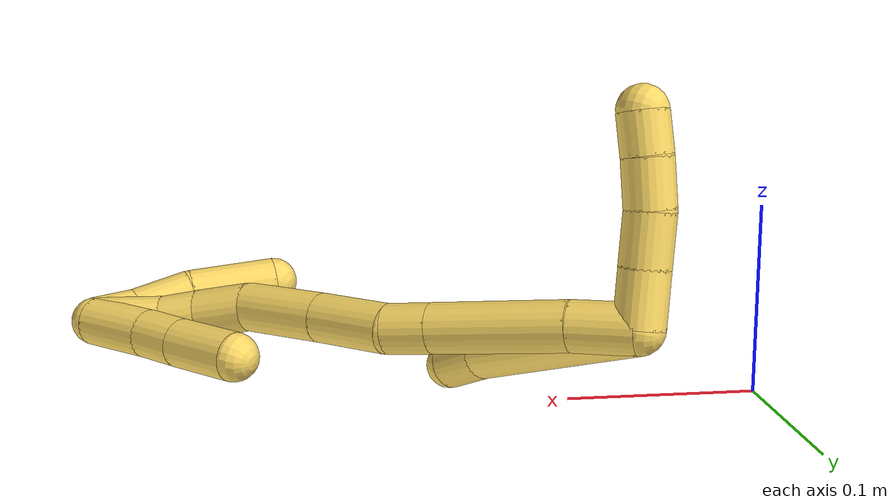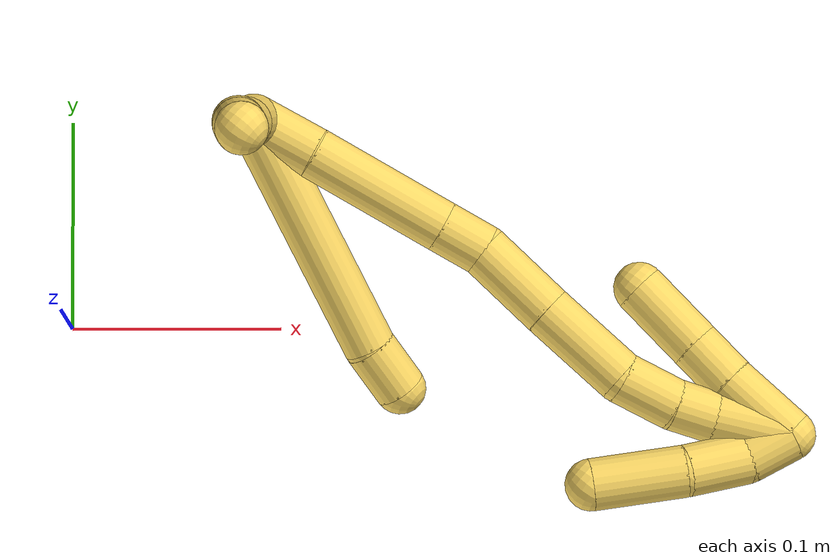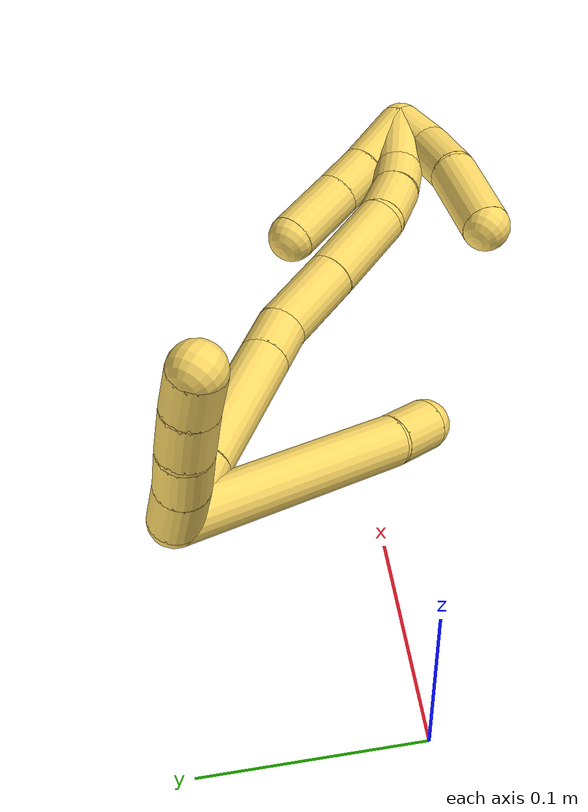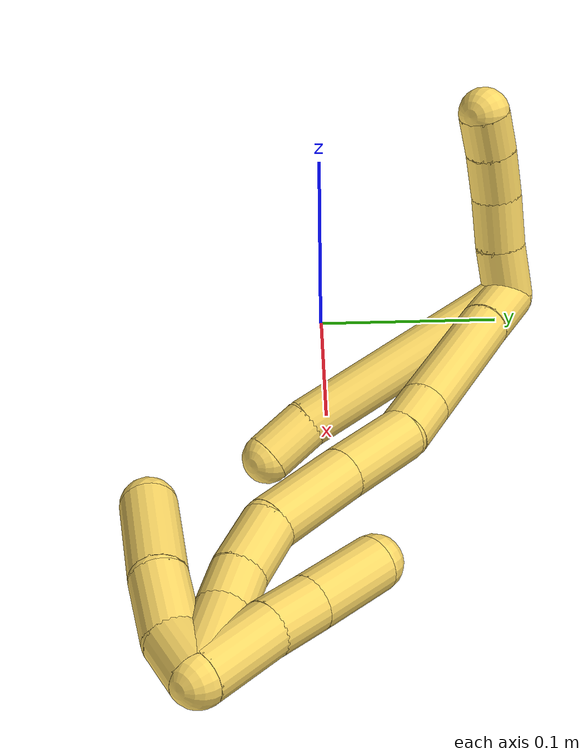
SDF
<sdf version="1.7">
 <world name="default">
  <model name="5">
   <static>0</static>
   <link name="5">
    <collision name="collision-cylinder-e_1_2_8">
     <pose>0.002382 -0.034576 0.051373 0.592393 0.038443 0.011733</pose>
     <geometry><cylinder><radius>0.0125</radius><length>0.123941</length></cylinder></geometry>
     <surface>
      <friction><ode><mu>1.16</mu><mu2>1.16</mu2><slip1>0</slip1><slip2>0</slip2></ode></friction>
      <contact><ode><kp>1e+06</kp><kd>1</kd><max_vel>0</max_vel><min_depth>0.001</min_depth></ode></contact>
     </surface>
    </collision>
    <visual name="visual-cylinder-e_1_2_8">
     <pose>0.002382 -0.034576 0.051373 0.592393 0.038443 0.011733</pose>
     <geometry><cylinder><radius>0.0125</radius><length>0.123941</length></cylinder></geometry>
     <material><ambient>1 0.858824 0.4 1</ambient></material>
    </visual>
    <collision name="collision-cylinder-e_2_8_6">
     <pose>0.007338 -0.075636 0.113751 0.532497 0.198889 0.054408</pose>
     <geometry><cylinder><radius>0.0125</radius><length>0.026059</length></cylinder></geometry>
     <surface>
      <friction><ode><mu>1.16</mu><mu2>1.16</mu2><slip1>0</slip1><slip2>0</slip2></ode></friction>
      <contact><ode><kp>1e+06</kp><kd>1</kd><max_vel>0</max_vel><min_depth>0.001</min_depth></ode></contact>
     </surface>
    </collision>
    <visual name="visual-cylinder-e_2_8_6">
     <pose>0.007338 -0.075636 0.113751 0.532497 0.198889 0.054408</pose>
     <geometry><cylinder><radius>0.0125</radius><length>0.026059</length></cylinder></geometry>
     <material><ambient>1 0.858824 0.4 1</ambient></material>
    </visual>
    <collision name="collision-cylinder-e_1_2_9">
     <pose>-0.011684 0.007449 0.001854 -1.32681 -0.989533 0.798112</pose>
     <geometry><cylinder><radius>0.0125</radius><length>0.02796</length></cylinder></geometry>
     <surface>
      <friction><ode><mu>1.16</mu><mu2>1.16</mu2><slip1>0</slip1><slip2>0</slip2></ode></friction>
      <contact><ode><kp>1e+06</kp><kd>1</kd><max_vel>0</max_vel><min_depth>0.001</min_depth></ode></contact>
     </surface>
    </collision>
    <visual name="visual-cylinder-e_1_2_9">
     <pose>-0.011684 0.007449 0.001854 -1.32681 -0.989533 0.798112</pose>
     <geometry><cylinder><radius>0.0125</radius><length>0.02796</length></cylinder></geometry>
     <material><ambient>1 0.858824 0.4 1</ambient></material>
    </visual>
    <collision name="collision-cylinder-e_2_9_10">
     <pose>-0.034146 0.02271 0.005111 -1.39321 -0.936011 0.800042</pose>
     <geometry><cylinder><radius>0.0125</radius><length>0.026769</length></cylinder></geometry>
     <surface>
      <friction><ode><mu>1.16</mu><mu2>1.16</mu2><slip1>0</slip1><slip2>0</slip2></ode></friction>
      <contact><ode><kp>1e+06</kp><kd>1</kd><max_vel>0</max_vel><min_depth>0.001</min_depth></ode></contact>
     </surface>
    </collision>
    <visual name="visual-cylinder-e_2_9_10">
     <pose>-0.034146 0.02271 0.005111 -1.39321 -0.936011 0.800042</pose>
     <geometry><cylinder><radius>0.0125</radius><length>0.026769</length></cylinder></geometry>
     <material><ambient>1 0.858824 0.4 1</ambient></material>
    </visual>
    <collision name="collision-cylinder-e_3_10_11">
     <pose>-0.054153 0.03792 0.009496 -1.18748 -0.858143 0.599028</pose>
     <geometry><cylinder><radius>0.0125</radius><length>0.024398</length></cylinder></geometry>
     <surface>
      <friction><ode><mu>1.16</mu><mu2>1.16</mu2><slip1>0</slip1><slip2>0</slip2></ode></friction>
      <contact><ode><kp>1e+06</kp><kd>1</kd><max_vel>0</max_vel><min_depth>0.001</min_depth></ode></contact>
     </surface>
    </collision>
    <visual name="visual-cylinder-e_3_10_11">
     <pose>-0.054153 0.03792 0.009496 -1.18748 -0.858143 0.599028</pose>
     <geometry><cylinder><radius>0.0125</radius><length>0.024398</length></cylinder></geometry>
     <material><ambient>1 0.858824 0.4 1</ambient></material>
    </visual>
    <collision name="collision-cylinder-e_4_11_5">
     <pose>-0.071273 0.051366 0.015653 -1.08765 -0.857239 0.539131</pose>
     <geometry><cylinder><radius>0.0125</radius><length>0.020872</length></cylinder></geometry>
     <surface>
      <friction><ode><mu>1.16</mu><mu2>1.16</mu2><slip1>0</slip1><slip2>0</slip2></ode></friction>
      <contact><ode><kp>1e+06</kp><kd>1</kd><max_vel>0</max_vel><min_depth>0.001</min_depth></ode></contact>
     </surface>
    </collision>
    <visual name="visual-cylinder-e_4_11_5">
     <pose>-0.071273 0.051366 0.015653 -1.08765 -0.857239 0.539131</pose>
     <geometry><cylinder><radius>0.0125</radius><length>0.020872</length></cylinder></geometry>
     <material><ambient>1 0.858824 0.4 1</ambient></material>
    </visual>
    <collision name="collision-cylinder-e_1_2_12">
     <pose>0.003886 0.000343 0.015753 -0.021781 0.241791 -0.002646</pose>
     <geometry><cylinder><radius>0.0125</radius><length>0.032458</length></cylinder></geometry>
     <surface>
      <friction><ode><mu>1.16</mu><mu2>1.16</mu2><slip1>0</slip1><slip2>0</slip2></ode></friction>
      <contact><ode><kp>1e+06</kp><kd>1</kd><max_vel>0</max_vel><min_depth>0.001</min_depth></ode></contact>
     </surface>
    </collision>
    <visual name="visual-cylinder-e_1_2_12">
     <pose>0.003886 0.000343 0.015753 -0.021781 0.241791 -0.002646</pose>
     <geometry><cylinder><radius>0.0125</radius><length>0.032458</length></cylinder></geometry>
     <material><ambient>1 0.858824 0.4 1</ambient></material>
    </visual>
    <collision name="collision-cylinder-e_2_12_13">
     <pose>0.017457 -0.000585 0.064953 0.037987 0.281679 0.005386</pose>
     <geometry><cylinder><radius>0.0125</radius><length>0.069687</length></cylinder></geometry>
     <surface>
      <friction><ode><mu>1.16</mu><mu2>1.16</mu2><slip1>0</slip1><slip2>0</slip2></ode></friction>
      <contact><ode><kp>1e+06</kp><kd>1</kd><max_vel>0</max_vel><min_depth>0.001</min_depth></ode></contact>
     </surface>
    </collision>
    <visual name="visual-cylinder-e_2_12_13">
     <pose>0.017457 -0.000585 0.064953 0.037987 0.281679 0.005386</pose>
     <geometry><cylinder><radius>0.0125</radius><length>0.069687</length></cylinder></geometry>
     <material><ambient>1 0.858824 0.4 1</ambient></material>
    </visual>
    <collision name="collision-cylinder-e_3_13_14">
     <pose>0.030398 -0.002242 0.109521 0.034724 0.284586 0.004975</pose>
     <geometry><cylinder><radius>0.0125</radius><length>0.023189</length></cylinder></geometry>
     <surface>
      <friction><ode><mu>1.16</mu><mu2>1.16</mu2><slip1>0</slip1><slip2>0</slip2></ode></friction>
      <contact><ode><kp>1e+06</kp><kd>1</kd><max_vel>0</max_vel><min_depth>0.001</min_depth></ode></contact>
     </surface>
    </collision>
    <visual name="visual-cylinder-e_3_13_14">
     <pose>0.030398 -0.002242 0.109521 0.034724 0.284586 0.004975</pose>
     <geometry><cylinder><radius>0.0125</radius><length>0.023189</length></cylinder></geometry>
     <material><ambient>1 0.858824 0.4 1</ambient></material>
    </visual>
    <collision name="collision-cylinder-e_4_14_15">
     <pose>0.03447 -0.005671 0.141191 0.146998 0.039309 0.002895</pose>
     <geometry><cylinder><radius>0.0125</radius><length>0.041577</length></cylinder></geometry>
     <surface>
      <friction><ode><mu>1.16</mu><mu2>1.16</mu2><slip1>0</slip1><slip2>0</slip2></ode></friction>
      <contact><ode><kp>1e+06</kp><kd>1</kd><max_vel>0</max_vel><min_depth>0.001</min_depth></ode></contact>
     </surface>
    </collision>
    <visual name="visual-cylinder-e_4_14_15">
     <pose>0.03447 -0.005671 0.141191 0.146998 0.039309 0.002895</pose>
     <geometry><cylinder><radius>0.0125</radius><length>0.041577</length></cylinder></geometry>
     <material><ambient>1 0.858824 0.4 1</ambient></material>
    </visual>
    <collision name="collision-cylinder-e_5_15_16">
     <pose>0.036767 -0.011837 0.184966 0.133683 0.063062 0.004223</pose>
     <geometry><cylinder><radius>0.0125</radius><length>0.046965</length></cylinder></geometry>
     <surface>
      <friction><ode><mu>1.16</mu><mu2>1.16</mu2><slip1>0</slip1><slip2>0</slip2></ode></friction>
      <contact><ode><kp>1e+06</kp><kd>1</kd><max_vel>0</max_vel><min_depth>0.001</min_depth></ode></contact>
     </surface>
    </collision>
    <visual name="visual-cylinder-e_5_15_16">
     <pose>0.036767 -0.011837 0.184966 0.133683 0.063062 0.004223</pose>
     <geometry><cylinder><radius>0.0125</radius><length>0.046965</length></cylinder></geometry>
     <material><ambient>1 0.858824 0.4 1</ambient></material>
    </visual>
    <collision name="collision-cylinder-e_6_16_17">
     <pose>0.043624 -0.015878 0.221362 0.069546 0.386787 0.013625</pose>
     <geometry><cylinder><radius>0.0125</radius><length>0.028507</length></cylinder></geometry>
     <surface>
      <friction><ode><mu>1.16</mu><mu2>1.16</mu2><slip1>0</slip1><slip2>0</slip2></ode></friction>
      <contact><ode><kp>1e+06</kp><kd>1</kd><max_vel>0</max_vel><min_depth>0.001</min_depth></ode></contact>
     </surface>
    </collision>
    <visual name="visual-cylinder-e_6_16_17">
     <pose>0.043624 -0.015878 0.221362 0.069546 0.386787 0.013625</pose>
     <geometry><cylinder><radius>0.0125</radius><length>0.028507</length></cylinder></geometry>
     <material><ambient>1 0.858824 0.4 1</ambient></material>
    </visual>
    <collision name="collision-cylinder-e_7_17_18">
     <pose>0.053952 -0.01624 0.243589 -0.061284 0.499487 -0.015636</pose>
     <geometry><cylinder><radius>0.0125</radius><length>0.020677</length></cylinder></geometry>
     <surface>
      <friction><ode><mu>1.16</mu><mu2>1.16</mu2><slip1>0</slip1><slip2>0</slip2></ode></friction>
      <contact><ode><kp>1e+06</kp><kd>1</kd><max_vel>0</max_vel><min_depth>0.001</min_depth></ode></contact>
     </surface>
    </collision>
    <visual name="visual-cylinder-e_7_17_18">
     <pose>0.053952 -0.01624 0.243589 -0.061284 0.499487 -0.015636</pose>
     <geometry><cylinder><radius>0.0125</radius><length>0.020677</length></cylinder></geometry>
     <material><ambient>1 0.858824 0.4 1</ambient></material>
    </visual>
    <collision name="collision-cylinder-e_8_18_1">
     <pose>0.066472 -0.01165 0.269005 -0.241761 0.422184 -0.052048</pose>
     <geometry><cylinder><radius>0.0125</radius><length>0.036938</length></cylinder></geometry>
     <surface>
      <friction><ode><mu>1.16</mu><mu2>1.16</mu2><slip1>0</slip1><slip2>0</slip2></ode></friction>
      <contact><ode><kp>1e+06</kp><kd>1</kd><max_vel>0</max_vel><min_depth>0.001</min_depth></ode></contact>
     </surface>
    </collision>
    <visual name="visual-cylinder-e_8_18_1">
     <pose>0.066472 -0.01165 0.269005 -0.241761 0.422184 -0.052048</pose>
     <geometry><cylinder><radius>0.0125</radius><length>0.036938</length></cylinder></geometry>
     <material><ambient>1 0.858824 0.4 1</ambient></material>
    </visual>
    <collision name="collision-cylinder-e_1_1_19">
     <pose>0.065692 -0.014623 0.280894 2.13859 -0.787667 -1.29712</pose>
     <geometry><cylinder><radius>0.0125</radius><length>0.023558</length></cylinder></geometry>
     <surface>
      <friction><ode><mu>1.16</mu><mu2>1.16</mu2><slip1>0</slip1><slip2>0</slip2></ode></friction>
      <contact><ode><kp>1e+06</kp><kd>1</kd><max_vel>0</max_vel><min_depth>0.001</min_depth></ode></contact>
     </surface>
    </collision>
    <visual name="visual-cylinder-e_1_1_19">
     <pose>0.065692 -0.014623 0.280894 2.13859 -0.787667 -1.29712</pose>
     <geometry><cylinder><radius>0.0125</radius><length>0.023558</length></cylinder></geometry>
     <material><ambient>1 0.858824 0.4 1</ambient></material>
    </visual>
    <collision name="collision-cylinder-e_2_19_20">
     <pose>0.04549 -0.026716 0.267708 2.61335 -0.865517 -2.08235</pose>
     <geometry><cylinder><radius>0.0125</radius><length>0.031138</length></cylinder></geometry>
     <surface>
      <friction><ode><mu>1.16</mu><mu2>1.16</mu2><slip1>0</slip1><slip2>0</slip2></ode></friction>
      <contact><ode><kp>1e+06</kp><kd>1</kd><max_vel>0</max_vel><min_depth>0.001</min_depth></ode></contact>
     </surface>
    </collision>
    <visual name="visual-cylinder-e_2_19_20">
     <pose>0.04549 -0.026716 0.267708 2.61335 -0.865517 -2.08235</pose>
     <geometry><cylinder><radius>0.0125</radius><length>0.031138</length></cylinder></geometry>
     <material><ambient>1 0.858824 0.4 1</ambient></material>
    </visual>
    <collision name="collision-cylinder-e_3_20_4">
     <pose>0.019401 -0.041266 0.244126 2.57465 -0.679446 -1.76288</pose>
     <geometry><cylinder><radius>0.0125</radius><length>0.045304</length></cylinder></geometry>
     <surface>
      <friction><ode><mu>1.16</mu><mu2>1.16</mu2><slip1>0</slip1><slip2>0</slip2></ode></friction>
      <contact><ode><kp>1e+06</kp><kd>1</kd><max_vel>0</max_vel><min_depth>0.001</min_depth></ode></contact>
     </surface>
    </collision>
    <visual name="visual-cylinder-e_3_20_4">
     <pose>0.019401 -0.041266 0.244126 2.57465 -0.679446 -1.76288</pose>
     <geometry><cylinder><radius>0.0125</radius><length>0.045304</length></cylinder></geometry>
     <material><ambient>1 0.858824 0.4 1</ambient></material>
    </visual>
    <collision name="collision-cylinder-e_1_1_21">
     <pose>0.073549 -0.005728 0.266467 -3.04197 -0.025825 0.506931</pose>
     <geometry><cylinder><radius>0.0125</radius><length>0.037991</length></cylinder></geometry>
     <surface>
      <friction><ode><mu>1.16</mu><mu2>1.16</mu2><slip1>0</slip1><slip2>0</slip2></ode></friction>
      <contact><ode><kp>1e+06</kp><kd>1</kd><max_vel>0</max_vel><min_depth>0.001</min_depth></ode></contact>
     </surface>
    </collision>
    <visual name="visual-cylinder-e_1_1_21">
     <pose>0.073549 -0.005728 0.266467 -3.04197 -0.025825 0.506931</pose>
     <geometry><cylinder><radius>0.0125</radius><length>0.037991</length></cylinder></geometry>
     <material><ambient>1 0.858824 0.4 1</ambient></material>
    </visual>
    <collision name="collision-cylinder-e_2_21_22">
     <pose>0.07344 -0.002129 0.235653 -2.99908 0.031612 -0.435883</pose>
     <geometry><cylinder><radius>0.0125</radius><length>0.024095</length></cylinder></geometry>
     <surface>
      <friction><ode><mu>1.16</mu><mu2>1.16</mu2><slip1>0</slip1><slip2>0</slip2></ode></friction>
      <contact><ode><kp>1e+06</kp><kd>1</kd><max_vel>0</max_vel><min_depth>0.001</min_depth></ode></contact>
     </surface>
    </collision>
    <visual name="visual-cylinder-e_2_21_22">
     <pose>0.07344 -0.002129 0.235653 -2.99908 0.031612 -0.435883</pose>
     <geometry><cylinder><radius>0.0125</radius><length>0.024095</length></cylinder></geometry>
     <material><ambient>1 0.858824 0.4 1</ambient></material>
    </visual>
    <collision name="collision-cylinder-e_3_22_3">
     <pose>0.074086 0.002534 0.20501 -2.98513 0.014025 -0.178444</pose>
     <geometry><cylinder><radius>0.0125</radius><length>0.037914</length></cylinder></geometry>
     <surface>
      <friction><ode><mu>1.16</mu><mu2>1.16</mu2><slip1>0</slip1><slip2>0</slip2></ode></friction>
      <contact><ode><kp>1e+06</kp><kd>1</kd><max_vel>0</max_vel><min_depth>0.001</min_depth></ode></contact>
     </surface>
    </collision>
    <visual name="visual-cylinder-e_3_22_3">
     <pose>0.074086 0.002534 0.20501 -2.98513 0.014025 -0.178444</pose>
     <geometry><cylinder><radius>0.0125</radius><length>0.037914</length></cylinder></geometry>
     <material><ambient>1 0.858824 0.4 1</ambient></material>
    </visual>
    <collision name="collision-sphere-3">
     <pose>0.074352 0.005488 0.186287 0 -0 0</pose>
     <geometry><sphere><radius>0.0125</radius></sphere></geometry>
     <surface>
      <friction><ode><mu>1.16</mu><mu2>1.16</mu2><slip1>0</slip1><slip2>0</slip2></ode></friction>
      <contact><ode><kp>1e+06</kp><kd>1</kd><max_vel>0</max_vel><min_depth>0.001</min_depth></ode></contact>
     </surface>
    </collision>
    <visual name="visual-sphere-3">
     <pose>0.074352 0.005488 0.186287 0 -0 0</pose>
     <geometry><sphere><radius>0.0125</radius></sphere></geometry>
     <material><ambient>1 0.858824 0.4 1</ambient></material>
    </visual>
    <collision name="collision-sphere-22">
     <pose>0.07382 -0.000419 0.223734 0 -0 0</pose>
     <geometry><sphere><radius>0.0125</radius></sphere></geometry>
     <surface>
      <friction><ode><mu>1.16</mu><mu2>1.16</mu2><slip1>0</slip1><slip2>0</slip2></ode></friction>
      <contact><ode><kp>1e+06</kp><kd>1</kd><max_vel>0</max_vel><min_depth>0.001</min_depth></ode></contact>
     </surface>
    </collision>
    <visual name="visual-sphere-22">
     <pose>0.07382 -0.000419 0.223734 0 -0 0</pose>
     <geometry><sphere><radius>0.0125</radius></sphere></geometry>
     <material><ambient>1 0.858824 0.4 1</ambient></material>
    </visual>
    <collision name="collision-sphere-21">
     <pose>0.073059 -0.00384 0.247572 0 -0 0</pose>
     <geometry><sphere><radius>0.0125</radius></sphere></geometry>
     <surface>
      <friction><ode><mu>1.16</mu><mu2>1.16</mu2><slip1>0</slip1><slip2>0</slip2></ode></friction>
      <contact><ode><kp>1e+06</kp><kd>1</kd><max_vel>0</max_vel><min_depth>0.001</min_depth></ode></contact>
     </surface>
    </collision>
    <visual name="visual-sphere-21">
     <pose>0.073059 -0.00384 0.247572 0 -0 0</pose>
     <geometry><sphere><radius>0.0125</radius></sphere></geometry>
     <material><ambient>1 0.858824 0.4 1</ambient></material>
    </visual>
    <collision name="collision-sphere-4">
     <pose>0.005167 -0.05073 0.229262 0 -0 0</pose>
     <geometry><sphere><radius>0.0125</radius></sphere></geometry>
     <surface>
      <friction><ode><mu>1.16</mu><mu2>1.16</mu2><slip1>0</slip1><slip2>0</slip2></ode></friction>
      <contact><ode><kp>1e+06</kp><kd>1</kd><max_vel>0</max_vel><min_depth>0.001</min_depth></ode></contact>
     </surface>
    </collision>
    <visual name="visual-sphere-4">
     <pose>0.005167 -0.05073 0.229262 0 -0 0</pose>
     <geometry><sphere><radius>0.0125</radius></sphere></geometry>
     <material><ambient>1 0.858824 0.4 1</ambient></material>
    </visual>
    <collision name="collision-sphere-20">
     <pose>0.033635 -0.031803 0.258991 0 -0 0</pose>
     <geometry><sphere><radius>0.0125</radius></sphere></geometry>
     <surface>
      <friction><ode><mu>1.16</mu><mu2>1.16</mu2><slip1>0</slip1><slip2>0</slip2></ode></friction>
      <contact><ode><kp>1e+06</kp><kd>1</kd><max_vel>0</max_vel><min_depth>0.001</min_depth></ode></contact>
     </surface>
    </collision>
    <visual name="visual-sphere-20">
     <pose>0.033635 -0.031803 0.258991 0 -0 0</pose>
     <geometry><sphere><radius>0.0125</radius></sphere></geometry>
     <material><ambient>1 0.858824 0.4 1</ambient></material>
    </visual>
    <collision name="collision-sphere-11">
     <pose>-0.063383 0.045317 0.012479 0 -0 0</pose>
     <geometry><sphere><radius>0.0125</radius></sphere></geometry>
     <surface>
      <friction><ode><mu>1.16</mu><mu2>1.16</mu2><slip1>0</slip1><slip2>0</slip2></ode></friction>
      <contact><ode><kp>1e+06</kp><kd>1</kd><max_vel>0</max_vel><min_depth>0.001</min_depth></ode></contact>
     </surface>
    </collision>
    <visual name="visual-sphere-11">
     <pose>-0.063383 0.045317 0.012479 0 -0 0</pose>
     <geometry><sphere><radius>0.0125</radius></sphere></geometry>
     <material><ambient>1 0.858824 0.4 1</ambient></material>
    </visual>
    <collision name="collision-sphere-10">
     <pose>-0.044923 0.030522 0.006513 0 -0 0</pose>
     <geometry><sphere><radius>0.0125</radius></sphere></geometry>
     <surface>
      <friction><ode><mu>1.16</mu><mu2>1.16</mu2><slip1>0</slip1><slip2>0</slip2></ode></friction>
      <contact><ode><kp>1e+06</kp><kd>1</kd><max_vel>0</max_vel><min_depth>0.001</min_depth></ode></contact>
     </surface>
    </collision>
    <visual name="visual-sphere-10">
     <pose>-0.044923 0.030522 0.006513 0 -0 0</pose>
     <geometry><sphere><radius>0.0125</radius></sphere></geometry>
     <material><ambient>1 0.858824 0.4 1</ambient></material>
    </visual>
    <collision name="collision-sphere-6">
     <pose>0.009912 -0.08212 0.124755 0 -0 0</pose>
     <geometry><sphere><radius>0.0125</radius></sphere></geometry>
     <surface>
      <friction><ode><mu>1.16</mu><mu2>1.16</mu2><slip1>0</slip1><slip2>0</slip2></ode></friction>
      <contact><ode><kp>1e+06</kp><kd>1</kd><max_vel>0</max_vel><min_depth>0.001</min_depth></ode></contact>
     </surface>
    </collision>
    <visual name="visual-sphere-6">
     <pose>0.009912 -0.08212 0.124755 0 -0 0</pose>
     <geometry><sphere><radius>0.0125</radius></sphere></geometry>
     <material><ambient>1 0.858824 0.4 1</ambient></material>
    </visual>
    <collision name="collision-sphere-9">
     <pose>-0.023368 0.014898 0.003709 0 -0 0</pose>
     <geometry><sphere><radius>0.0125</radius></sphere></geometry>
     <surface>
      <friction><ode><mu>1.16</mu><mu2>1.16</mu2><slip1>0</slip1><slip2>0</slip2></ode></friction>
      <contact><ode><kp>1e+06</kp><kd>1</kd><max_vel>0</max_vel><min_depth>0.001</min_depth></ode></contact>
     </surface>
    </collision>
    <visual name="visual-sphere-9">
     <pose>-0.023368 0.014898 0.003709 0 -0 0</pose>
     <geometry><sphere><radius>0.0125</radius></sphere></geometry>
     <material><ambient>1 0.858824 0.4 1</ambient></material>
    </visual>
    <collision name="collision-sphere-2">
     <geometry><sphere><radius>0.0125</radius></sphere></geometry>
     <surface>
      <friction><ode><mu>1.16</mu><mu2>1.16</mu2><slip1>0</slip1><slip2>0</slip2></ode></friction>
      <contact><ode><kp>1e+06</kp><kd>1</kd><max_vel>0</max_vel><min_depth>0.001</min_depth></ode></contact>
     </surface>
    </collision>
    <visual name="visual-sphere-2">
     <geometry><sphere><radius>0.0125</radius></sphere></geometry>
     <material><ambient>1 0.858824 0.4 1</ambient></material>
    </visual>
    <collision name="collision-sphere-19">
     <pose>0.057344 -0.021629 0.276425 0 -0 0</pose>
     <geometry><sphere><radius>0.0125</radius></sphere></geometry>
     <surface>
      <friction><ode><mu>1.16</mu><mu2>1.16</mu2><slip1>0</slip1><slip2>0</slip2></ode></friction>
      <contact><ode><kp>1e+06</kp><kd>1</kd><max_vel>0</max_vel><min_depth>0.001</min_depth></ode></contact>
     </surface>
    </collision>
    <visual name="visual-sphere-19">
     <pose>0.057344 -0.021629 0.276425 0 -0 0</pose>
     <geometry><sphere><radius>0.0125</radius></sphere></geometry>
     <material><ambient>1 0.858824 0.4 1</ambient></material>
    </visual>
    <collision name="collision-sphere-8">
     <pose>0.004763 -0.069151 0.102746 0 -0 0</pose>
     <geometry><sphere><radius>0.0125</radius></sphere></geometry>
     <surface>
      <friction><ode><mu>1.16</mu><mu2>1.16</mu2><slip1>0</slip1><slip2>0</slip2></ode></friction>
      <contact><ode><kp>1e+06</kp><kd>1</kd><max_vel>0</max_vel><min_depth>0.001</min_depth></ode></contact>
     </surface>
    </collision>
    <visual name="visual-sphere-8">
     <pose>0.004763 -0.069151 0.102746 0 -0 0</pose>
     <geometry><sphere><radius>0.0125</radius></sphere></geometry>
     <material><ambient>1 0.858824 0.4 1</ambient></material>
    </visual>
    <collision name="collision-sphere-5">
     <pose>-0.079164 0.057415 0.018826 0 -0 0</pose>
     <geometry><sphere><radius>0.0125</radius></sphere></geometry>
     <surface>
      <friction><ode><mu>1.16</mu><mu2>1.16</mu2><slip1>0</slip1><slip2>0</slip2></ode></friction>
      <contact><ode><kp>1e+06</kp><kd>1</kd><max_vel>0</max_vel><min_depth>0.001</min_depth></ode></contact>
     </surface>
    </collision>
    <visual name="visual-sphere-5">
     <pose>-0.079164 0.057415 0.018826 0 -0 0</pose>
     <geometry><sphere><radius>0.0125</radius></sphere></geometry>
     <material><ambient>1 0.858824 0.4 1</ambient></material>
    </visual>
    <collision name="collision-sphere-12">
     <pose>0.007772 0.000686 0.031507 0 -0 0</pose>
     <geometry><sphere><radius>0.0125</radius></sphere></geometry>
     <surface>
      <friction><ode><mu>1.16</mu><mu2>1.16</mu2><slip1>0</slip1><slip2>0</slip2></ode></friction>
      <contact><ode><kp>1e+06</kp><kd>1</kd><max_vel>0</max_vel><min_depth>0.001</min_depth></ode></contact>
     </surface>
    </collision>
    <visual name="visual-sphere-12">
     <pose>0.007772 0.000686 0.031507 0 -0 0</pose>
     <geometry><sphere><radius>0.0125</radius></sphere></geometry>
     <material><ambient>1 0.858824 0.4 1</ambient></material>
    </visual>
    <collision name="collision-sphere-13">
     <pose>0.027143 -0.001856 0.098399 0 -0 0</pose>
     <geometry><sphere><radius>0.0125</radius></sphere></geometry>
     <surface>
      <friction><ode><mu>1.16</mu><mu2>1.16</mu2><slip1>0</slip1><slip2>0</slip2></ode></friction>
      <contact><ode><kp>1e+06</kp><kd>1</kd><max_vel>0</max_vel><min_depth>0.001</min_depth></ode></contact>
     </surface>
    </collision>
    <visual name="visual-sphere-13">
     <pose>0.027143 -0.001856 0.098399 0 -0 0</pose>
     <geometry><sphere><radius>0.0125</radius></sphere></geometry>
     <material><ambient>1 0.858824 0.4 1</ambient></material>
    </visual>
    <collision name="collision-sphere-14">
     <pose>0.033653 -0.002629 0.120642 0 -0 0</pose>
     <geometry><sphere><radius>0.0125</radius></sphere></geometry>
     <surface>
      <friction><ode><mu>1.16</mu><mu2>1.16</mu2><slip1>0</slip1><slip2>0</slip2></ode></friction>
      <contact><ode><kp>1e+06</kp><kd>1</kd><max_vel>0</max_vel><min_depth>0.001</min_depth></ode></contact>
     </surface>
    </collision>
    <visual name="visual-sphere-14">
     <pose>0.033653 -0.002629 0.120642 0 -0 0</pose>
     <geometry><sphere><radius>0.0125</radius></sphere></geometry>
     <material><ambient>1 0.858824 0.4 1</ambient></material>
    </visual>
    <collision name="collision-sphere-15">
     <pose>0.035287 -0.008714 0.16174 0 -0 0</pose>
     <geometry><sphere><radius>0.0125</radius></sphere></geometry>
     <surface>
      <friction><ode><mu>1.16</mu><mu2>1.16</mu2><slip1>0</slip1><slip2>0</slip2></ode></friction>
      <contact><ode><kp>1e+06</kp><kd>1</kd><max_vel>0</max_vel><min_depth>0.001</min_depth></ode></contact>
     </surface>
    </collision>
    <visual name="visual-sphere-15">
     <pose>0.035287 -0.008714 0.16174 0 -0 0</pose>
     <geometry><sphere><radius>0.0125</radius></sphere></geometry>
     <material><ambient>1 0.858824 0.4 1</ambient></material>
    </visual>
    <collision name="collision-sphere-16">
     <pose>0.038247 -0.014961 0.208193 0 -0 0</pose>
     <geometry><sphere><radius>0.0125</radius></sphere></geometry>
     <surface>
      <friction><ode><mu>1.16</mu><mu2>1.16</mu2><slip1>0</slip1><slip2>0</slip2></ode></friction>
      <contact><ode><kp>1e+06</kp><kd>1</kd><max_vel>0</max_vel><min_depth>0.001</min_depth></ode></contact>
     </surface>
    </collision>
    <visual name="visual-sphere-16">
     <pose>0.038247 -0.014961 0.208193 0 -0 0</pose>
     <geometry><sphere><radius>0.0125</radius></sphere></geometry>
     <material><ambient>1 0.858824 0.4 1</ambient></material>
    </visual>
    <collision name="collision-sphere-17">
     <pose>0.049 -0.016796 0.23453 0 -0 0</pose>
     <geometry><sphere><radius>0.0125</radius></sphere></geometry>
     <surface>
      <friction><ode><mu>1.16</mu><mu2>1.16</mu2><slip1>0</slip1><slip2>0</slip2></ode></friction>
      <contact><ode><kp>1e+06</kp><kd>1</kd><max_vel>0</max_vel><min_depth>0.001</min_depth></ode></contact>
     </surface>
    </collision>
    <visual name="visual-sphere-17">
     <pose>0.049 -0.016796 0.23453 0 -0 0</pose>
     <geometry><sphere><radius>0.0125</radius></sphere></geometry>
     <material><ambient>1 0.858824 0.4 1</ambient></material>
    </visual>
    <collision name="collision-sphere-18">
     <pose>0.058904 -0.015684 0.252648 0 -0 0</pose>
     <geometry><sphere><radius>0.0125</radius></sphere></geometry>
     <surface>
      <friction><ode><mu>1.16</mu><mu2>1.16</mu2><slip1>0</slip1><slip2>0</slip2></ode></friction>
      <contact><ode><kp>1e+06</kp><kd>1</kd><max_vel>0</max_vel><min_depth>0.001</min_depth></ode></contact>
     </surface>
    </collision>
    <visual name="visual-sphere-18">
     <pose>0.058904 -0.015684 0.252648 0 -0 0</pose>
     <geometry><sphere><radius>0.0125</radius></sphere></geometry>
     <material><ambient>1 0.858824 0.4 1</ambient></material>
    </visual>
    <collision name="collision-sphere-1">
     <pose>0.07404 -0.007617 0.285363 0 -0 0</pose>
     <geometry><sphere><radius>0.0125</radius></sphere></geometry>
     <surface>
      <friction><ode><mu>1.16</mu><mu2>1.16</mu2><slip1>0</slip1><slip2>0</slip2></ode></friction>
      <contact><ode><kp>1e+06</kp><kd>1</kd><max_vel>0</max_vel><min_depth>0.001</min_depth></ode></contact>
     </surface>
    </collision>
    <visual name="visual-sphere-1">
     <pose>0.07404 -0.007617 0.285363 0 -0 0</pose>
     <geometry><sphere><radius>0.0125</radius></sphere></geometry>
     <material><ambient>1 0.858824 0.4 1</ambient></material>
    </visual>
    <inertial>
     <pose>0.023566 -0.011672 0.137446 0 -0 0</pose>
     <mass>0.75</mass>
     <inertia>
      <ixx>0.000235</ixx>
      <ixy>0</ixy>
      <ixz>0</ixz>
      <iyy>0.000196</iyy>
      <iyz>0</iyz>
      <izz>0.000111</izz>
     </inertia>
    </inertial>
   </link>
   <pose>0.088816 0.093463 0.062308 1.40891 0.793152 0.767386</pose>
  </model>
 </world>
</sdf>
